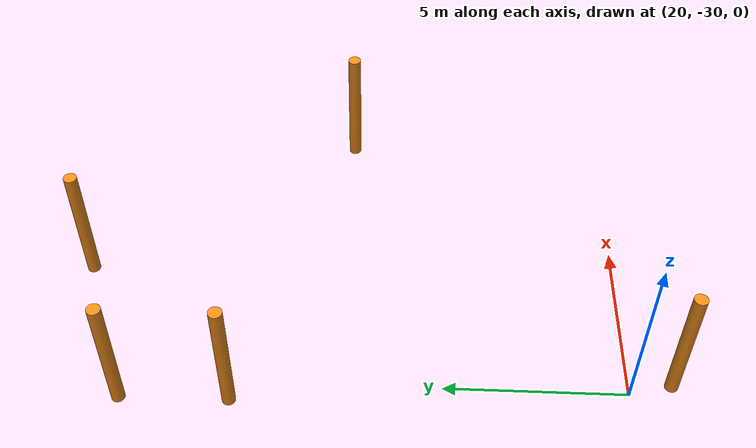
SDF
<sdf version="1.6">
 <model name="Skog">
  <link name="link_1_clone_22">
   <inertial>
    <mass>1</mass>
    <inertia><ixx>0.145833</ixx><ixy>0</ixy><ixz>0</ixz><iyy>0.145833</iyy><iyz>0</iyz><izz>0.125</izz></inertia>
   </inertial>
   <pose>25.5926 -14.0173 0 0 -0 0</pose>
   <visual name="visual">
    <geometry><cylinder><radius>0.2</radius><length>4</length></cylinder></geometry>
    <material>
     <lighting>1</lighting>
     <script><uri>file://media/materials/scripts/gazebo.material</uri><name>Gazebo/Orange</name></script>
     <shader type="vertex"><normal_map>__default__</normal_map></shader>
     <ambient>0.3 0.3 0.3 1</ambient>
     <diffuse>0.7 0.7 0.7 1</diffuse>
     <specular>0.01 0.01 0.01 1</specular>
     <emissive>0 0 0 1</emissive>
    </material>
   </visual>
   <collision name="collision">
    <geometry><cylinder><radius>0.2</radius><length>4</length></cylinder></geometry>
    <surface>
     <friction>
      <ode><mu>1</mu><mu2>1</mu2><fdir1>0 0 0</fdir1><slip1>0</slip1><slip2>0</slip2></ode>
      <torsional>
       <coefficient>1</coefficient>
       <patch_radius>0</patch_radius>
       <surface_radius>0</surface_radius>
       <use_patch_radius>1</use_patch_radius>
       <ode><slip>0</slip></ode>
      </torsional>
     </friction>
     <bounce><restitution_coefficient>0</restitution_coefficient><threshold>1e+06</threshold></bounce>
     <contact>
      <collide_without_contact>0</collide_without_contact>
      <collide_without_contact_bitmask>1</collide_without_contact_bitmask>
      <collide_bitmask>1</collide_bitmask>
      <ode>
       <soft_cfm>0</soft_cfm>
       <soft_erp>0.2</soft_erp>
       <kp>1e+13</kp>
       <kd>1</kd>
       <max_vel>0.01</max_vel>
       <min_depth>0</min_depth>
      </ode>
      <bullet>
       <split_impulse>1</split_impulse>
       <split_impulse_penetration_threshold>-0.01</split_impulse_penetration_threshold>
       <soft_cfm>0</soft_cfm>
       <soft_erp>0.2</soft_erp>
       <kp>1e+13</kp>
       <kd>1</kd>
      </bullet>
     </contact>
    </surface>
   </collision>
  </link>
  <link name="link_1_clone_33">
   <inertial>
    <mass>1</mass>
    <inertia><ixx>0.145833</ixx><ixy>0</ixy><ixz>0</ixz><iyy>0.145833</iyy><iyz>0</iyz><izz>0.125</izz></inertia>
   </inertial>
   <pose>20.7596 -18.9745 0 0 -0 0</pose>
   <visual name="visual">
    <geometry><cylinder><radius>0.2</radius><length>4</length></cylinder></geometry>
    <material>
     <lighting>1</lighting>
     <script><uri>file://media/materials/scripts/gazebo.material</uri><name>Gazebo/Orange</name></script>
     <shader type="vertex"><normal_map>__default__</normal_map></shader>
     <ambient>0.3 0.3 0.3 1</ambient>
     <diffuse>0.7 0.7 0.7 1</diffuse>
     <specular>0.01 0.01 0.01 1</specular>
     <emissive>0 0 0 1</emissive>
    </material>
   </visual>
   <collision name="collision">
    <geometry><cylinder><radius>0.2</radius><length>4</length></cylinder></geometry>
    <surface>
     <friction>
      <ode><mu>1</mu><mu2>1</mu2><fdir1>0 0 0</fdir1><slip1>0</slip1><slip2>0</slip2></ode>
      <torsional>
       <coefficient>1</coefficient>
       <patch_radius>0</patch_radius>
       <surface_radius>0</surface_radius>
       <use_patch_radius>1</use_patch_radius>
       <ode><slip>0</slip></ode>
      </torsional>
     </friction>
     <bounce><restitution_coefficient>0</restitution_coefficient><threshold>1e+06</threshold></bounce>
     <contact>
      <collide_without_contact>0</collide_without_contact>
      <collide_without_contact_bitmask>1</collide_without_contact_bitmask>
      <collide_bitmask>1</collide_bitmask>
      <ode>
       <soft_cfm>0</soft_cfm>
       <soft_erp>0.2</soft_erp>
       <kp>1e+13</kp>
       <kd>1</kd>
       <max_vel>0.01</max_vel>
       <min_depth>0</min_depth>
      </ode>
      <bullet>
       <split_impulse>1</split_impulse>
       <split_impulse_penetration_threshold>-0.01</split_impulse_penetration_threshold>
       <soft_cfm>0</soft_cfm>
       <soft_erp>0.2</soft_erp>
       <kp>1e+13</kp>
       <kd>1</kd>
      </bullet>
     </contact>
    </surface>
   </collision>
  </link>
  <link name="link_1_clone_48">
   <inertial>
    <mass>1</mass>
    <inertia><ixx>0.145833</ixx><ixy>0</ixy><ixz>0</ixz><iyy>0.145833</iyy><iyz>0</iyz><izz>0.125</izz></inertia>
   </inertial>
   <pose>31.4702 -22.0914 0 0 -0 0</pose>
   <visual name="visual">
    <geometry><cylinder><radius>0.2</radius><length>4</length></cylinder></geometry>
    <material>
     <lighting>1</lighting>
     <script><uri>file://media/materials/scripts/gazebo.material</uri><name>Gazebo/Orange</name></script>
     <shader type="vertex"><normal_map>__default__</normal_map></shader>
     <ambient>0.3 0.3 0.3 1</ambient>
     <diffuse>0.7 0.7 0.7 1</diffuse>
     <specular>0.01 0.01 0.01 1</specular>
     <emissive>0 0 0 1</emissive>
    </material>
   </visual>
   <collision name="collision">
    <geometry><cylinder><radius>0.2</radius><length>4</length></cylinder></geometry>
    <surface>
     <friction>
      <ode><mu>1</mu><mu2>1</mu2><fdir1>0 0 0</fdir1><slip1>0</slip1><slip2>0</slip2></ode>
      <torsional>
       <coefficient>1</coefficient>
       <patch_radius>0</patch_radius>
       <surface_radius>0</surface_radius>
       <use_patch_radius>1</use_patch_radius>
       <ode><slip>0</slip></ode>
      </torsional>
     </friction>
     <bounce><restitution_coefficient>0</restitution_coefficient><threshold>1e+06</threshold></bounce>
     <contact>
      <collide_without_contact>0</collide_without_contact>
      <collide_without_contact_bitmask>1</collide_without_contact_bitmask>
      <collide_bitmask>1</collide_bitmask>
      <ode>
       <soft_cfm>0</soft_cfm>
       <soft_erp>0.2</soft_erp>
       <kp>1e+13</kp>
       <kd>1</kd>
       <max_vel>0.01</max_vel>
       <min_depth>0</min_depth>
      </ode>
      <bullet>
       <split_impulse>1</split_impulse>
       <split_impulse_penetration_threshold>-0.01</split_impulse_penetration_threshold>
       <soft_cfm>0</soft_cfm>
       <soft_erp>0.2</soft_erp>
       <kp>1e+13</kp>
       <kd>1</kd>
      </bullet>
     </contact>
    </surface>
   </collision>
  </link>
  <link name="link_1_clone_49">
   <inertial>
    <mass>1</mass>
    <inertia><ixx>0.145833</ixx><ixy>0</ixy><ixz>0</ixz><iyy>0.145833</iyy><iyz>0</iyz><izz>0.125</izz></inertia>
   </inertial>
   <pose>21.7311 -31.7724 0 0 -0 0</pose>
   <visual name="visual">
    <geometry><cylinder><radius>0.2</radius><length>4</length></cylinder></geometry>
    <material>
     <lighting>1</lighting>
     <script><uri>file://media/materials/scripts/gazebo.material</uri><name>Gazebo/Orange</name></script>
     <shader type="vertex"><normal_map>__default__</normal_map></shader>
     <ambient>0.3 0.3 0.3 1</ambient>
     <diffuse>0.7 0.7 0.7 1</diffuse>
     <specular>0.01 0.01 0.01 1</specular>
     <emissive>0 0 0 1</emissive>
    </material>
   </visual>
   <collision name="collision">
    <geometry><cylinder><radius>0.2</radius><length>4</length></cylinder></geometry>
    <surface>
     <friction>
      <ode><mu>1</mu><mu2>1</mu2><fdir1>0 0 0</fdir1><slip1>0</slip1><slip2>0</slip2></ode>
      <torsional>
       <coefficient>1</coefficient>
       <patch_radius>0</patch_radius>
       <surface_radius>0</surface_radius>
       <use_patch_radius>1</use_patch_radius>
       <ode><slip>0</slip></ode>
      </torsional>
     </friction>
     <bounce><restitution_coefficient>0</restitution_coefficient><threshold>1e+06</threshold></bounce>
     <contact>
      <collide_without_contact>0</collide_without_contact>
      <collide_without_contact_bitmask>1</collide_without_contact_bitmask>
      <collide_bitmask>1</collide_bitmask>
      <ode>
       <soft_cfm>0</soft_cfm>
       <soft_erp>0.2</soft_erp>
       <kp>1e+13</kp>
       <kd>1</kd>
       <max_vel>0.01</max_vel>
       <min_depth>0</min_depth>
      </ode>
      <bullet>
       <split_impulse>1</split_impulse>
       <split_impulse_penetration_threshold>-0.01</split_impulse_penetration_threshold>
       <soft_cfm>0</soft_cfm>
       <soft_erp>0.2</soft_erp>
       <kp>1e+13</kp>
       <kd>1</kd>
      </bullet>
     </contact>
    </surface>
   </collision>
  </link>
  <link name="link_1_clone_71">
   <inertial>
    <mass>1</mass>
    <inertia><ixx>0.145833</ixx><ixy>0</ixy><ixz>0</ixz><iyy>0.145833</iyy><iyz>0</iyz><izz>0.125</izz></inertia>
   </inertial>
   <pose>20.7311 -15.7724 0 0 -0 0</pose>
   <visual name="visual">
    <geometry><cylinder><radius>0.2</radius><length>4</length></cylinder></geometry>
    <material>
     <lighting>1</lighting>
     <script><uri>file://media/materials/scripts/gazebo.material</uri><name>Gazebo/Orange</name></script>
     <shader type="vertex"><normal_map>__default__</normal_map></shader>
     <ambient>0.3 0.3 0.3 1</ambient>
     <diffuse>0.7 0.7 0.7 1</diffuse>
     <specular>0.01 0.01 0.01 1</specular>
     <emissive>0 0 0 1</emissive>
    </material>
   </visual>
   <collision name="collision">
    <geometry><cylinder><radius>0.2</radius><length>4</length></cylinder></geometry>
    <surface>
     <friction>
      <ode><mu>1</mu><mu2>1</mu2><fdir1>0 0 0</fdir1><slip1>0</slip1><slip2>0</slip2></ode>
      <torsional>
       <coefficient>1</coefficient>
       <patch_radius>0</patch_radius>
       <surface_radius>0</surface_radius>
       <use_patch_radius>1</use_patch_radius>
       <ode><slip>0</slip></ode>
      </torsional>
     </friction>
     <bounce><restitution_coefficient>0</restitution_coefficient><threshold>1e+06</threshold></bounce>
     <contact>
      <collide_without_contact>0</collide_without_contact>
      <collide_without_contact_bitmask>1</collide_without_contact_bitmask>
      <collide_bitmask>1</collide_bitmask>
      <ode>
       <soft_cfm>0</soft_cfm>
       <soft_erp>0.2</soft_erp>
       <kp>1e+13</kp>
       <kd>1</kd>
       <max_vel>0.01</max_vel>
       <min_depth>0</min_depth>
      </ode>
      <bullet>
       <split_impulse>1</split_impulse>
       <split_impulse_penetration_threshold>-0.01</split_impulse_penetration_threshold>
       <soft_cfm>0</soft_cfm>
       <soft_erp>0.2</soft_erp>
       <kp>1e+13</kp>
       <kd>1</kd>
      </bullet>
     </contact>
    </surface>
   </collision>
  </link>
  <static>0</static>
 </model>
</sdf>
